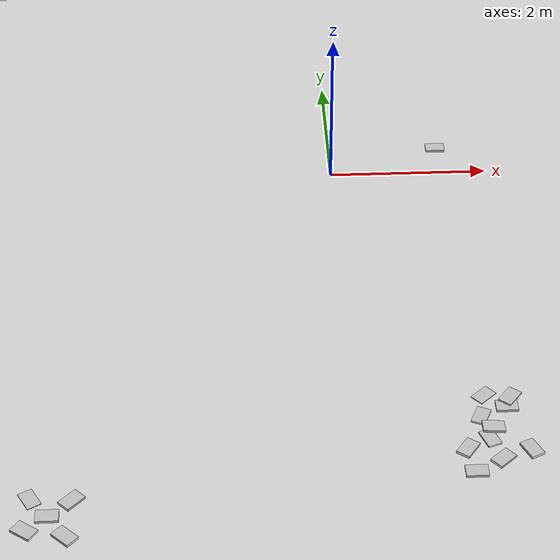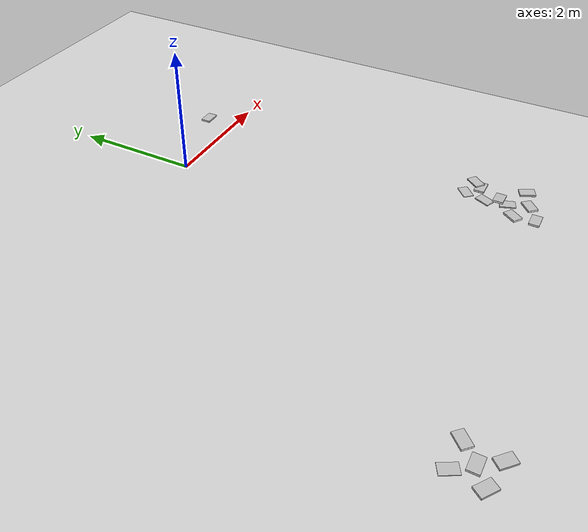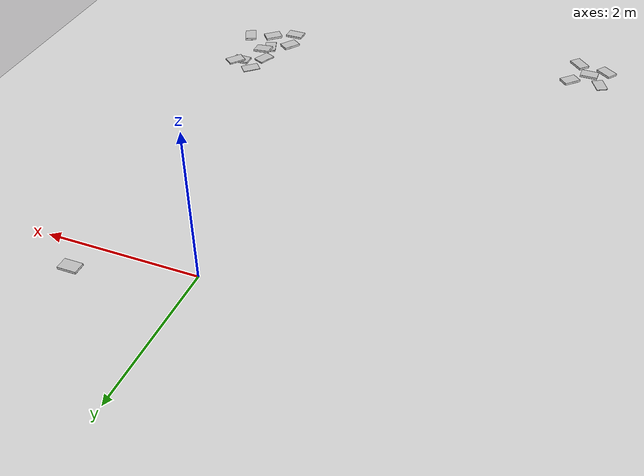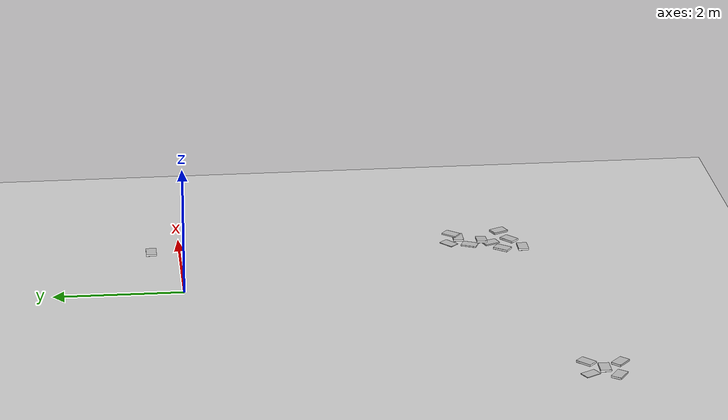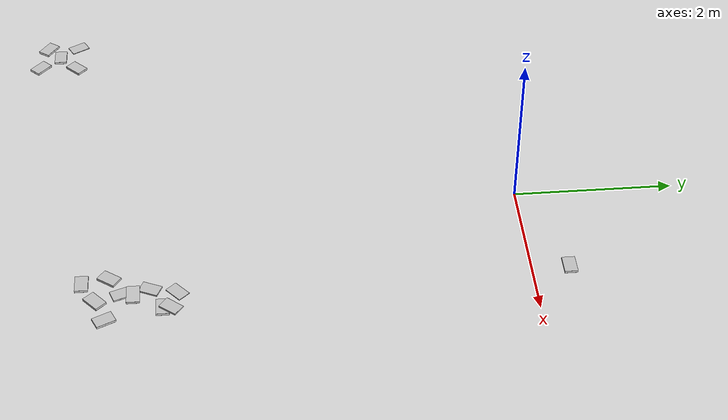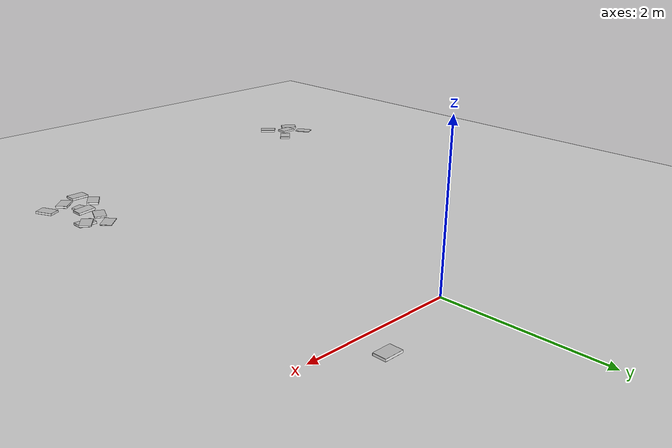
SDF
<sdf version="1.6">
 <world name="default">
  <light name="sun" type="directional">
   <pose>0 0 10 0 -0 0</pose>
   <diffuse>0.8 0.8 0.8 1</diffuse>
   <specular>0.1 0.1 0.1 1</specular>
   <attenuation>
    <range>1000</range>
    <constant>0.9</constant>
    <linear>0.01</linear>
    <quadratic>0.001</quadratic>
   </attenuation>
   <direction>-0.5 0.5 -1</direction>
  </light>
  <model name="ground_plane">
   <static>1</static>
   <link name="link">
    <collision name="collision">
     <geometry><plane><normal>0 0 1</normal><size>100 100</size></plane></geometry>
     <surface><friction><ode><mu>100</mu><mu2>50</mu2></ode></friction></surface>
    </collision>
    <visual name="visual">
     <cast_shadows>0</cast_shadows>
     <geometry><plane><normal>0 0 1</normal><size>100 100</size></plane></geometry>
     <material>
      <script><uri>file://media/materials/scripts/gazebo.material</uri><name>Gazebo/Grey</name></script>
     </material>
    </visual>
   </link>
  </model>
  <gravity>0 0 -9.8</gravity>
  <magnetic_field>6e-06 2.3e-05 -4.2e-05</magnetic_field>
  <atmosphere type="adiabatic"/>
  <physics name="default_physics" default="0" type="ode">
   <max_step_size>0.001</max_step_size>
   <real_time_factor>1</real_time_factor>
   <real_time_update_rate>1000</real_time_update_rate>
  </physics>
  <scene><ambient>0.4 0.4 0.4 1</ambient><background>0.7 0.7 0.7 1</background><shadows>1</shadows></scene>
  <spherical_coordinates>
   <surface_model>EARTH_WGS84</surface_model>
   <latitude_deg>0</latitude_deg>
   <longitude_deg>0</longitude_deg>
   <elevation>0</elevation>
   <heading_deg>0</heading_deg>
  </spherical_coordinates>
  <light name="user_point_light_0" type="point">
   <pose>5.23371 -5.18923 1 0 -0 0</pose>
   <diffuse>0.5 0.5 0.5 1</diffuse>
   <specular>0.1 0.1 0.1 1</specular>
   <attenuation>
    <range>20</range>
    <constant>0.5</constant>
    <linear>0.01</linear>
    <quadratic>0.001</quadratic>
   </attenuation>
   <cast_shadows>0</cast_shadows>
   <direction>0 0 -1</direction>
  </light>
  <light name="user_point_light_1" type="point">
   <pose>5.57424 -1.37116 1 0 -0 0</pose>
   <diffuse>0.5 0.5 0.5 1</diffuse>
   <specular>0.1 0.1 0.1 1</specular>
   <attenuation>
    <range>20</range>
    <constant>0.5</constant>
    <linear>0.01</linear>
    <quadratic>0.001</quadratic>
   </attenuation>
   <cast_shadows>0</cast_shadows>
   <direction>0 0 -1</direction>
  </light>
  <light name="user_point_light_2" type="point">
   <pose>0.061309 -2.24659 1 0 -0 0</pose>
   <diffuse>0.5 0.5 0.5 1</diffuse>
   <specular>0.1 0.1 0.1 1</specular>
   <attenuation>
    <range>20</range>
    <constant>0.5</constant>
    <linear>0.01</linear>
    <quadratic>0.001</quadratic>
   </attenuation>
   <cast_shadows>0</cast_shadows>
   <direction>0 0 -1</direction>
  </light>
  <light name="user_point_light_3" type="point">
   <pose>-4.22655 -5.65374 1 0 -0 0</pose>
   <diffuse>0.5 0.5 0.5 1</diffuse>
   <specular>0.1 0.1 0.1 1</specular>
   <attenuation>
    <range>20</range>
    <constant>0.5</constant>
    <linear>0.01</linear>
    <quadratic>0.001</quadratic>
   </attenuation>
   <cast_shadows>0</cast_shadows>
   <direction>0 0 -1</direction>
  </light>
  <light name="user_point_light_4" type="point">
   <pose>-4.33694 0.739548 1 0 -0 0</pose>
   <diffuse>0.5 0.5 0.5 1</diffuse>
   <specular>0.1 0.1 0.1 1</specular>
   <attenuation>
    <range>20</range>
    <constant>0.5</constant>
    <linear>0.01</linear>
    <quadratic>0.001</quadratic>
   </attenuation>
   <cast_shadows>0</cast_shadows>
   <direction>0 0 -1</direction>
  </light>
  <model name="book_2">
   <link name="cover">
    <pose>0 -0.000108 0.015405 0 -0 0</pose>
    <visual name="visual">
     <geometry><box><size>0.245 0.16 0.03</size></box></geometry>
     <material>
      <script>
       <uri>model://book_2/materials/scripts</uri>
       <uri>model://book_2/materials/textures</uri>
       <name>book_2</name>
      </script>
     </material>
    </visual>
    <collision name="collision"><geometry><box><size>0.245 0.16 0.03</size></box></geometry></collision>
   </link>
   <link name="page">
    <pose>0 0.000608 0.015405 0 -0 0</pose>
    <visual name="visual">
     <geometry><box><size>0.24502 0.15862 0.028</size></box></geometry>
     <material>
      <lighting>1</lighting>
      <ambient>1 1 1 1</ambient>
      <diffuse>1 1 1 1</diffuse>
      <specular>0.01 0.01 0.01 1</specular>
      <emissive>0 0 0 1</emissive>
      <shader type="vertex"><normal_map>__default__</normal_map></shader>
     </material>
    </visual>
    <collision name="collision"><geometry><box><size>0.245 0.16 0.03</size></box></geometry></collision>
   </link>
   <static>1</static>
   <pose>1.39341 0.448403 0.059885 0 -0 0</pose>
  </model>
  <model name="book_20">
   <link name="cover">
    <pose>0 -0.000108 0.015405 0 -0 0</pose>
    <visual name="visual">
     <geometry><box><size>0.245 0.16 0.03</size></box></geometry>
     <material>
      <script>
       <uri>model://book_20/materials/scripts</uri>
       <uri>model://book_20/materials/textures</uri>
       <name>book_20</name>
      </script>
     </material>
    </visual>
    <collision name="collision"><geometry><box><size>0.245 0.16 0.03</size></box></geometry></collision>
   </link>
   <link name="page">
    <pose>0 0.000608 0.015405 0 -0 0</pose>
    <visual name="visual">
     <geometry><box><size>0.24502 0.15862 0.028</size></box></geometry>
     <material>
      <lighting>1</lighting>
      <ambient>1 1 1 1</ambient>
      <diffuse>1 1 1 1</diffuse>
      <specular>0.01 0.01 0.01 1</specular>
      <emissive>0 0 0 1</emissive>
      <shader type="vertex"><normal_map>__default__</normal_map></shader>
     </material>
    </visual>
    <collision name="collision"><geometry><box><size>0.245 0.16 0.03</size></box></geometry></collision>
   </link>
   <static>1</static>
   <pose>1.45682 -4.77588 0.03381 0 0.083548 0</pose>
  </model>
  <model name="book_6">
   <link name="cover">
    <pose>0 -0.000108 0.01 0 -0 0</pose>
    <visual name="visual">
     <geometry><box><size>0.245 0.16 0.02</size></box></geometry>
     <material>
      <script>
       <uri>model://book_6/materials/scripts</uri>
       <uri>model://book_6/materials/textures</uri>
       <name>book_6</name>
      </script>
     </material>
    </visual>
    <collision name="collision"><geometry><box><size>0.245 0.16 0.02</size></box></geometry></collision>
   </link>
   <link name="page">
    <pose>0 0.000608 0.01 0 -0 0</pose>
    <visual name="visual">
     <geometry><box><size>0.24502 0.15862 0.018</size></box></geometry>
     <material>
      <lighting>1</lighting>
      <ambient>1 1 1 1</ambient>
      <diffuse>1 1 1 1</diffuse>
      <specular>0.01 0.01 0.01 1</specular>
      <emissive>0 0 0 1</emissive>
      <shader type="vertex"><normal_map>__default__</normal_map></shader>
     </material>
    </visual>
    <collision name="collision"><geometry><box><size>0.245 0.16 0.018</size></box></geometry></collision>
   </link>
   <static>1</static>
   <pose>1.69867 -4.32552 0.051432 0 -0 0.903387</pose>
  </model>
  <model name="book_4">
   <link name="cover">
    <pose>0 -0.000108 0.01 0 -0 0</pose>
    <visual name="visual">
     <geometry><box><size>0.245 0.16 0.02</size></box></geometry>
     <material>
      <script>
       <uri>model://book_4/materials/scripts</uri>
       <uri>model://book_4/materials/textures</uri>
       <name>book_4</name>
      </script>
     </material>
     <cast_shadows>0</cast_shadows>
    </visual>
    <collision name="collision"><geometry><box><size>0.245 0.16 0.02</size></box></geometry></collision>
   </link>
   <link name="page">
    <pose>0 0.000608 0.01 0 -0 0</pose>
    <visual name="visual">
     <geometry><box><size>0.24502 0.15862 0.018</size></box></geometry>
     <material>
      <lighting>1</lighting>
      <ambient>1 1 1 1</ambient>
      <diffuse>1 1 1 1</diffuse>
      <specular>0.01 0.01 0.01 1</specular>
      <emissive>0 0 0 1</emissive>
      <shader type="vertex"><normal_map>__default__</normal_map></shader>
     </material>
     <cast_shadows>0</cast_shadows>
    </visual>
    <collision name="collision"><geometry><box><size>0.245 0.16 0.018</size></box></geometry></collision>
   </link>
   <static>1</static>
   <pose>1.40421 -4.91611 0.008331 0 0 -1.21986</pose>
  </model>
  <model name="book_20_0">
   <link name="cover">
    <pose>0 -0.000108 0.015405 0 -0 0</pose>
    <visual name="visual">
     <geometry><box><size>0.245 0.16 0.03</size></box></geometry>
     <material>
      <script>
       <uri>model://book_20/materials/scripts</uri>
       <uri>model://book_20/materials/textures</uri>
       <name>book_20</name>
      </script>
     </material>
    </visual>
    <collision name="collision"><geometry><box><size>0.245 0.16 0.03</size></box></geometry></collision>
   </link>
   <link name="page">
    <pose>0 0.000608 0.015405 0 -0 0</pose>
    <visual name="visual">
     <geometry><box><size>0.24502 0.15862 0.028</size></box></geometry>
     <material>
      <lighting>1</lighting>
      <ambient>1 1 1 1</ambient>
      <diffuse>1 1 1 1</diffuse>
      <specular>0.01 0.01 0.01 1</specular>
      <emissive>0 0 0 1</emissive>
      <shader type="vertex"><normal_map>__default__</normal_map></shader>
     </material>
    </visual>
    <collision name="collision"><geometry><box><size>0.245 0.16 0.03</size></box></geometry></collision>
   </link>
   <static>1</static>
   <pose>1.65327 -4.42813 0 0 -0 0</pose>
  </model>
  <model name="book_3">
   <link name="cover">
    <pose>0 -0.000108 0.01 0 -0 0</pose>
    <visual name="visual">
     <geometry><box><size>0.245 0.16 0.02</size></box></geometry>
     <material>
      <script>
       <uri>model://book_3/materials/scripts</uri>
       <uri>model://book_3/materials/textures</uri>
       <name>book_3</name>
      </script>
     </material>
    </visual>
    <collision name="collision"><geometry><box><size>0.245 0.16 0.02</size></box></geometry></collision>
   </link>
   <link name="page">
    <pose>0 0.000608 0.01 0 -0 0</pose>
    <visual name="visual">
     <geometry><box><size>0.24502 0.15862 0.018</size></box></geometry>
     <material>
      <lighting>1</lighting>
      <ambient>1 1 1 1</ambient>
      <diffuse>1 1 1 1</diffuse>
      <specular>0.01 0.01 0.01 1</specular>
      <emissive>0 0 0 1</emissive>
      <shader type="vertex"><normal_map>__default__</normal_map></shader>
     </material>
    </visual>
    <collision name="collision"><geometry><box><size>0.245 0.16 0.018</size></box></geometry></collision>
   </link>
   <static>1</static>
   <pose>1.34986 -4.57692 0.009708 0 -0 1.1508</pose>
  </model>
  <model name="book_8">
   <link name="cover">
    <pose>0 -0.000108 0.005 0 -0 0</pose>
    <visual name="visual">
     <geometry><box><size>0.245 0.16 0.01</size></box></geometry>
     <material>
      <script>
       <uri>model://book_8/materials/scripts</uri>
       <uri>model://book_8/materials/textures</uri>
       <name>book_8</name>
      </script>
     </material>
    </visual>
    <collision name="collision"><geometry><box><size>0.245 0.16 0.01</size></box></geometry></collision>
   </link>
   <link name="page">
    <pose>0 0.000608 0.005 0 -0 0</pose>
    <visual name="visual">
     <geometry><box><size>0.24502 0.15862 0.008</size></box></geometry>
     <material>
      <lighting>1</lighting>
      <ambient>1 1 1 1</ambient>
      <diffuse>1 1 1 1</diffuse>
      <specular>0.01 0.01 0.01 1</specular>
      <emissive>0 0 0 1</emissive>
      <shader type="vertex"><normal_map>__default__</normal_map></shader>
     </material>
    </visual>
    <collision name="collision"><geometry><box><size>0.245 0.16 0.008</size></box></geometry></collision>
   </link>
   <static>1</static>
   <pose>1.41955 -4.25255 0.016727 0 -0 0.728442</pose>
  </model>
  <model name="book_19">
   <link name="cover">
    <pose>0 -0.000108 0.015405 0 -0 0</pose>
    <visual name="visual">
     <geometry><box><size>0.245 0.16 0.03</size></box></geometry>
     <material>
      <script>
       <uri>model://book_19/materials/scripts</uri>
       <uri>model://book_19/materials/textures</uri>
       <name>book_19</name>
      </script>
     </material>
    </visual>
    <collision name="collision"><geometry><box><size>0.245 0.16 0.03</size></box></geometry></collision>
   </link>
   <link name="page">
    <pose>0 0.000608 0.015405 0 -0 0</pose>
    <visual name="visual">
     <geometry><box><size>0.24502 0.15862 0.028</size></box></geometry>
     <material>
      <lighting>1</lighting>
      <ambient>1 1 1 1</ambient>
      <diffuse>1 1 1 1</diffuse>
      <specular>0.01 0.01 0.01 1</specular>
      <emissive>0 0 0 1</emissive>
      <shader type="vertex"><normal_map>__default__</normal_map></shader>
     </material>
    </visual>
    <collision name="collision"><geometry><box><size>0.245 0.16 0.03</size></box></geometry></collision>
   </link>
   <static>1</static>
   <pose>1.50441 -5.22864 0.00636 0 -0 0.725345</pose>
  </model>
  <model name="book_15">
   <link name="cover">
    <pose>0 -0.000108 0.015405 0 -0 0</pose>
    <visual name="visual">
     <geometry><box><size>0.245 0.16 0.03</size></box></geometry>
     <material>
      <script>
       <uri>model://book_15/materials/scripts</uri>
       <uri>model://book_15/materials/textures</uri>
       <name>book_15</name>
      </script>
     </material>
    </visual>
    <collision name="collision"><geometry><box><size>0.245 0.16 0.03</size></box></geometry></collision>
   </link>
   <link name="page">
    <pose>0 0.000608 0.015405 0 -0 0</pose>
    <visual name="visual">
     <geometry><box><size>0.24502 0.15862 0.028</size></box></geometry>
     <material>
      <lighting>1</lighting>
      <ambient>1 1 1 1</ambient>
      <diffuse>1 1 1 1</diffuse>
      <specular>0.01 0.01 0.01 1</specular>
      <emissive>0 0 0 1</emissive>
      <shader type="vertex"><normal_map>__default__</normal_map></shader>
     </material>
    </visual>
    <collision name="collision"><geometry><box><size>0.245 0.16 0.03</size></box></geometry></collision>
   </link>
   <static>1</static>
   <pose>1.82773 -5.10786 0.013835 0 0 -1.1322</pose>
  </model>
  <model name="book_18">
   <link name="cover">
    <pose>0 -0.000108 0.015405 0 -0 0</pose>
    <visual name="visual">
     <geometry><box><size>0.245 0.16 0.03</size></box></geometry>
     <material>
      <script>
       <uri>model://book_18/materials/scripts</uri>
       <uri>model://book_18/materials/textures</uri>
       <name>book_18</name>
      </script>
     </material>
    </visual>
    <collision name="collision"><geometry><box><size>0.245 0.16 0.03</size></box></geometry></collision>
   </link>
   <link name="page">
    <pose>0 0.000608 0.015405 0 -0 0</pose>
    <visual name="visual">
     <geometry><box><size>0.24502 0.15862 0.028</size></box></geometry>
     <material>
      <lighting>1</lighting>
      <ambient>1 1 1 1</ambient>
      <diffuse>1 1 1 1</diffuse>
      <specular>0.01 0.01 0.01 1</specular>
      <emissive>0 0 0 1</emissive>
      <shader type="vertex"><normal_map>__default__</normal_map></shader>
     </material>
    </visual>
    <collision name="collision"><geometry><box><size>0.245 0.16 0.03</size></box></geometry></collision>
   </link>
   <static>1</static>
   <pose>1.14728 -5.0668 0.011118 0 -0 0.948349</pose>
  </model>
  <model name="book_18_0">
   <link name="cover">
    <pose>0 -0.000108 0.015405 0 -0 0</pose>
    <visual name="visual">
     <geometry><box><size>0.245 0.16 0.03</size></box></geometry>
     <material>
      <script>
       <uri>model://book_18/materials/scripts</uri>
       <uri>model://book_18/materials/textures</uri>
       <name>book_18</name>
      </script>
     </material>
    </visual>
    <collision name="collision"><geometry><box><size>0.245 0.16 0.03</size></box></geometry></collision>
   </link>
   <link name="page">
    <pose>0 0.000608 0.015405 0 -0 0</pose>
    <visual name="visual">
     <geometry><box><size>0.24502 0.15862 0.028</size></box></geometry>
     <material>
      <lighting>1</lighting>
      <ambient>1 1 1 1</ambient>
      <diffuse>1 1 1 1</diffuse>
      <specular>0.01 0.01 0.01 1</specular>
      <emissive>0 0 0 1</emissive>
      <shader type="vertex"><normal_map>__default__</normal_map></shader>
     </material>
    </visual>
    <collision name="collision"><geometry><box><size>0.245 0.16 0.03</size></box></geometry></collision>
   </link>
   <static>1</static>
   <pose>1.19971 -5.39621 0 0 -0 0</pose>
  </model>
  <model name="book_20_1">
   <link name="cover">
    <pose>0 -0.000108 0.015405 0 -0 0</pose>
    <visual name="visual">
     <geometry><box><size>0.245 0.16 0.03</size></box></geometry>
     <material>
      <script>
       <uri>model://book_20/materials/scripts</uri>
       <uri>model://book_20/materials/textures</uri>
       <name>book_20</name>
      </script>
     </material>
    </visual>
    <collision name="collision"><geometry><box><size>0.245 0.16 0.03</size></box></geometry></collision>
   </link>
   <link name="page">
    <pose>0 0.000608 0.015405 0 -0 0</pose>
    <visual name="visual">
     <geometry><box><size>0.24502 0.15862 0.028</size></box></geometry>
     <material>
      <lighting>1</lighting>
      <ambient>1 1 1 1</ambient>
      <diffuse>1 1 1 1</diffuse>
      <specular>0.01 0.01 0.01 1</specular>
      <emissive>0 0 0 1</emissive>
      <shader type="vertex"><normal_map>__default__</normal_map></shader>
     </material>
    </visual>
    <collision name="collision"><geometry><box><size>0.245 0.16 0.03</size></box></geometry></collision>
   </link>
   <static>1</static>
   <pose>-3.27913 -5.86441 0.030445 0 -0 0</pose>
  </model>
  <model name="book_8_0">
   <link name="cover">
    <pose>0 -0.000108 0.005 0 -0 0</pose>
    <visual name="visual">
     <geometry><box><size>0.245 0.16 0.01</size></box></geometry>
     <material>
      <script>
       <uri>model://book_8/materials/scripts</uri>
       <uri>model://book_8/materials/textures</uri>
       <name>book_8</name>
      </script>
     </material>
    </visual>
    <collision name="collision"><geometry><box><size>0.245 0.16 0.01</size></box></geometry></collision>
   </link>
   <link name="page">
    <pose>0 0.000608 0.005 0 -0 0</pose>
    <visual name="visual">
     <geometry><box><size>0.24502 0.15862 0.008</size></box></geometry>
     <material>
      <lighting>1</lighting>
      <ambient>1 1 1 1</ambient>
      <diffuse>1 1 1 1</diffuse>
      <specular>0.01 0.01 0.01 1</specular>
      <emissive>0 0 0 1</emissive>
      <shader type="vertex"><normal_map>__default__</normal_map></shader>
     </material>
    </visual>
    <collision name="collision"><geometry><box><size>0.245 0.16 0.008</size></box></geometry></collision>
   </link>
   <static>1</static>
   <pose>-3.47379 -5.62459 0.044988 0 0 -1.06722</pose>
  </model>
  <model name="book_17">
   <link name="cover">
    <pose>0 -0.000108 0.015405 0 -0 0</pose>
    <visual name="visual">
     <geometry><box><size>0.245 0.16 0.03</size></box></geometry>
     <material>
      <script>
       <uri>model://book_17/materials/scripts</uri>
       <uri>model://book_17/materials/textures</uri>
       <name>book_17</name>
      </script>
     </material>
    </visual>
    <collision name="collision"><geometry><box><size>0.245 0.16 0.03</size></box></geometry></collision>
   </link>
   <link name="page">
    <pose>0 0.000608 0.015405 0 -0 0</pose>
    <visual name="visual">
     <geometry><box><size>0.24502 0.15862 0.028</size></box></geometry>
     <material>
      <lighting>1</lighting>
      <ambient>1 1 1 1</ambient>
      <diffuse>1 1 1 1</diffuse>
      <specular>0.01 0.01 0.01 1</specular>
      <emissive>0 0 0 1</emissive>
      <shader type="vertex"><normal_map>__default__</normal_map></shader>
     </material>
    </visual>
    <collision name="collision"><geometry><box><size>0.245 0.16 0.03</size></box></geometry></collision>
   </link>
   <static>1</static>
   <pose>-3.50077 -6.03931 0.014149 0 0 -0.616535</pose>
  </model>
  <model name="book_19_0">
   <link name="cover">
    <pose>0 -0.000108 0.015405 0 -0 0</pose>
    <visual name="visual">
     <geometry><box><size>0.245 0.16 0.03</size></box></geometry>
     <material>
      <script>
       <uri>model://book_19/materials/scripts</uri>
       <uri>model://book_19/materials/textures</uri>
       <name>book_19</name>
      </script>
     </material>
    </visual>
    <collision name="collision"><geometry><box><size>0.245 0.16 0.03</size></box></geometry></collision>
   </link>
   <link name="page">
    <pose>0 0.000608 0.015405 0 -0 0</pose>
    <visual name="visual">
     <geometry><box><size>0.24502 0.15862 0.028</size></box></geometry>
     <material>
      <lighting>1</lighting>
      <ambient>1 1 1 1</ambient>
      <diffuse>1 1 1 1</diffuse>
      <specular>0.01 0.01 0.01 1</specular>
      <emissive>0 0 0 1</emissive>
      <shader type="vertex"><normal_map>__default__</normal_map></shader>
     </material>
    </visual>
    <collision name="collision"><geometry><box><size>0.245 0.16 0.03</size></box></geometry></collision>
   </link>
   <static>1</static>
   <pose>-3.08322 -6.12946 0.013621 0 0 -0.752714</pose>
  </model>
  <model name="book_14">
   <link name="cover">
    <pose>0 -0.000108 0.015405 0 -0 0</pose>
    <visual name="visual">
     <geometry><box><size>0.245 0.16 0.03</size></box></geometry>
     <material>
      <script>
       <uri>model://book_14/materials/scripts</uri>
       <uri>model://book_14/materials/textures</uri>
       <name>book_14</name>
      </script>
     </material>
    </visual>
    <collision name="collision"><geometry><box><size>0.245 0.16 0.03</size></box></geometry></collision>
   </link>
   <link name="page">
    <pose>0 0.000608 0.015405 0 -0 0</pose>
    <visual name="visual">
     <geometry><box><size>0.24502 0.15862 0.028</size></box></geometry>
     <material>
      <lighting>1</lighting>
      <ambient>1 1 1 1</ambient>
      <diffuse>1 1 1 1</diffuse>
      <specular>0.01 0.01 0.01 1</specular>
      <emissive>0 0 0 1</emissive>
      <shader type="vertex"><normal_map>__default__</normal_map></shader>
     </material>
    </visual>
    <collision name="collision"><geometry><box><size>0.245 0.16 0.03</size></box></geometry></collision>
   </link>
   <static>1</static>
   <pose>-3.04118 -5.63908 0.015482 0 -0 0.797397</pose>
  </model>
 </world>
</sdf>
